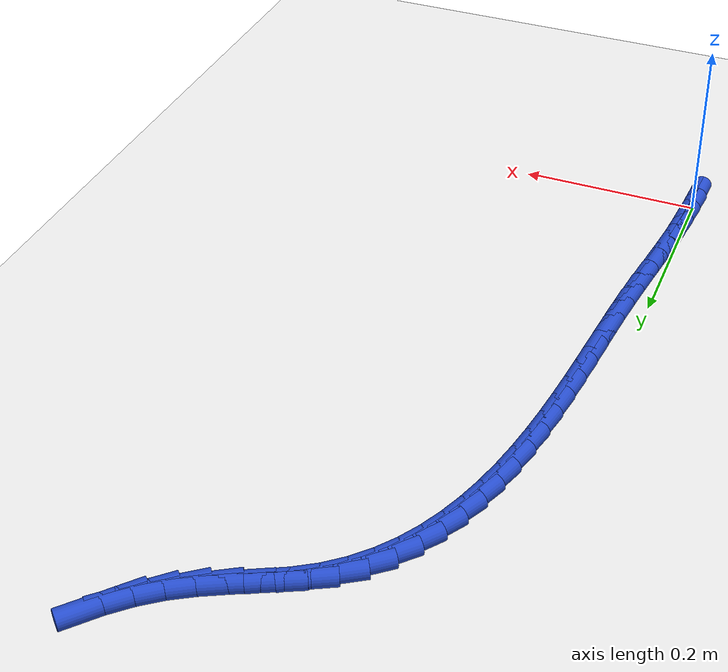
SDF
<sdf version="1.6">
 <world name="default">
  <model name="ground_plane">
   <static>1</static>
   <link name="link">
    <collision name="collision">
     <geometry><plane><normal>0 0 1</normal><size>100 100</size></plane></geometry>
     <surface><friction><ode><mu>100</mu><mu2>50</mu2></ode></friction></surface>
    </collision>
    <visual name="visual">
     <cast_shadows>0</cast_shadows>
     <geometry><plane><normal>0 0 1</normal><size>100 100</size></plane></geometry>
     <material>
      <script><uri>file://media/materials/scripts/gazebo.material</uri><name>Gazebo/WhiteGlow</name></script>
     </material>
    </visual>
   </link>
  </model>
  <model name="line">
   <link name="link_0">
    <pose>1.734723475976807e-18 9.71445146547012e-17 0.01 0 1.57 1.5256166260533213</pose>
    <collision name="collision">
     <geometry><cylinder><radius>0.01</radius><length>0.08</length></cylinder></geometry>
    </collision>
    <visual name="visual">
     <material>
      <script><name>Gazebo/Blue</name><uri>file://media/materials/scripts/gazebo.material</uri></script>
     </material>
     <geometry><cylinder><radius>0.01</radius><length>0.08</length></cylinder></geometry>
    </visual>
   </link>
   <link name="link_1">
    <pose>0.00116869647694062 0.025850131062630347 0.01 0 1.57 1.493957417507516</pose>
    <collision name="collision">
     <geometry><cylinder><radius>0.01</radius><length>0.08</length></cylinder></geometry>
    </collision>
    <visual name="visual">
     <material>
      <script><name>Gazebo/Blue</name><uri>file://media/materials/scripts/gazebo.material</uri></script>
     </material>
     <geometry><cylinder><radius>0.01</radius><length>0.08</length></cylinder></geometry>
    </visual>
   </link>
   <link name="link_2">
    <pose>0.003148059794446102 0.05155932280931687 0.01 0 1.57 1.4689957960236688</pose>
    <collision name="collision">
     <geometry><cylinder><radius>0.01</radius><length>0.08</length></cylinder></geometry>
    </collision>
    <visual name="visual">
     <material>
      <script><name>Gazebo/Blue</name><uri>file://media/materials/scripts/gazebo.material</uri></script>
     </material>
     <geometry><cylinder><radius>0.01</radius><length>0.08</length></cylinder></geometry>
    </visual>
   </link>
   <link name="link_3">
    <pose>0.005771656131429956 0.0772421652142144 0.01 0 1.57 1.4510282856935357</pose>
    <collision name="collision">
     <geometry><cylinder><radius>0.01</radius><length>0.08</length></cylinder></geometry>
    </collision>
    <visual name="visual">
     <material>
      <script><name>Gazebo/Blue</name><uri>file://media/materials/scripts/gazebo.material</uri></script>
     </material>
     <geometry><cylinder><radius>0.01</radius><length>0.08</length></cylinder></geometry>
    </visual>
   </link>
   <link name="link_4">
    <pose>0.008873051666805689 0.10301324825147767 0.01 0 1.57 1.4401528353001605</pose>
    <collision name="collision">
     <geometry><cylinder><radius>0.01</radius><length>0.08</length></cylinder></geometry>
    </collision>
    <visual name="visual">
     <material>
      <script><name>Gazebo/Blue</name><uri>file://media/materials/scripts/gazebo.material</uri></script>
     </material>
     <geometry><cylinder><radius>0.01</radius><length>0.08</length></cylinder></geometry>
    </visual>
   </link>
   <link name="link_5">
    <pose>0.012285812579486808 0.1289871618952615 0.01 0 1.57 1.4362952401775806</pose>
    <collision name="collision">
     <geometry><cylinder><radius>0.01</radius><length>0.08</length></cylinder></geometry>
    </collision>
    <visual name="visual">
     <material>
      <script><name>Gazebo/Blue</name><uri>file://media/materials/scripts/gazebo.material</uri></script>
     </material>
     <geometry><cylinder><radius>0.01</radius><length>0.08</length></cylinder></geometry>
    </visual>
   </link>
   <link name="link_6">
    <pose>0.015843505048386823 0.1552784961197205 0.01 0 1.57 1.439234777435147</pose>
    <collision name="collision">
     <geometry><cylinder><radius>0.01</radius><length>0.08</length></cylinder></geometry>
    </collision>
    <visual name="visual">
     <material>
      <script><name>Gazebo/Blue</name><uri>file://media/materials/scripts/gazebo.material</uri></script>
     </material>
     <geometry><cylinder><radius>0.01</radius><length>0.08</length></cylinder></geometry>
    </visual>
   </link>
   <link name="link_7">
    <pose>0.019379695252419237 0.1820018408990096 0.01 0 1.57 1.4486259576093121</pose>
    <collision name="collision">
     <geometry><cylinder><radius>0.01</radius><length>0.08</length></cylinder></geometry>
    </collision>
    <visual name="visual">
     <material>
      <script><name>Gazebo/Blue</name><uri>file://media/materials/scripts/gazebo.material</uri></script>
     </material>
     <geometry><cylinder><radius>0.01</radius><length>0.08</length></cylinder></geometry>
    </visual>
   </link>
   <link name="link_8">
    <pose>0.022727949370497557 0.2092717862072834 0.01 0 1.57 1.462984772046113</pose>
    <collision name="collision">
     <geometry><cylinder><radius>0.01</radius><length>0.08</length></cylinder></geometry>
    </collision>
    <visual name="visual">
     <material>
      <script><name>Gazebo/Blue</name><uri>file://media/materials/scripts/gazebo.material</uri></script>
     </material>
     <geometry><cylinder><radius>0.01</radius><length>0.08</length></cylinder></geometry>
    </visual>
   </link>
   <link name="link_9">
    <pose>0.025748484541219707 0.23717995621318205 0.01 0 1.57 1.474349265018024</pose>
    <collision name="collision">
     <geometry><cylinder><radius>0.01</radius><length>0.08</length></cylinder></geometry>
    </collision>
    <visual name="visual">
     <material>
      <script><name>Gazebo/Blue</name><uri>file://media/materials/scripts/gazebo.material</uri></script>
     </material>
     <geometry><cylinder><radius>0.01</radius><length>0.08</length></cylinder></geometry>
    </visual>
   </link>
   <link name="link_10">
    <pose>0.02850238716425009 0.2656448809664795 0.01 0 1.57 1.479580359231853</pose>
    <collision name="collision">
     <geometry><cylinder><radius>0.01</radius><length>0.08</length></cylinder></geometry>
    </collision>
    <visual name="visual">
     <material>
      <script><name>Gazebo/Blue</name><uri>file://media/materials/scripts/gazebo.material</uri></script>
     </material>
     <geometry><cylinder><radius>0.01</radius><length>0.08</length></cylinder></geometry>
    </visual>
   </link>
   <link name="link_11">
    <pose>0.03114232370157301 0.2945061736627289 0.01 0 1.57 1.4789799135891375</pose>
    <collision name="collision">
     <geometry><cylinder><radius>0.01</radius><length>0.08</length></cylinder></geometry>
    </collision>
    <visual name="visual">
     <material>
      <script><name>Gazebo/Blue</name><uri>file://media/materials/scripts/gazebo.material</uri></script>
     </material>
     <geometry><cylinder><radius>0.01</radius><length>0.08</length></cylinder></geometry>
    </visual>
   </link>
   <link name="link_12">
    <pose>0.03382142686987387 0.32360304571402376 0.01 0 1.57 1.4726811566009064</pose>
    <collision name="collision">
     <geometry><cylinder><radius>0.01</radius><length>0.08</length></cylinder></geometry>
    </collision>
    <visual name="visual">
     <material>
      <script><name>Gazebo/Blue</name><uri>file://media/materials/scripts/gazebo.material</uri></script>
     </material>
     <geometry><cylinder><radius>0.01</radius><length>0.08</length></cylinder></geometry>
    </visual>
   </link>
   <link name="link_13">
    <pose>0.036692829385838066 0.3527747085324575 0.01 0 1.57 1.460645369507437</pose>
    <collision name="collision">
     <geometry><cylinder><radius>0.01</radius><length>0.08</length></cylinder></geometry>
    </collision>
    <visual name="visual">
     <material>
      <script><name>Gazebo/Blue</name><uri>file://media/materials/scripts/gazebo.material</uri></script>
     </material>
     <geometry><cylinder><radius>0.01</radius><length>0.08</length></cylinder></geometry>
    </visual>
   </link>
   <link name="link_14">
    <pose>0.03990966396615103 0.38186037353012386 0.01 0 1.57 1.4426690949858585</pose>
    <collision name="collision">
     <geometry><cylinder><radius>0.01</radius><length>0.08</length></cylinder></geometry>
    </collision>
    <visual name="visual">
     <material>
      <script><name>Gazebo/Blue</name><uri>file://media/materials/scripts/gazebo.material</uri></script>
     </material>
     <geometry><cylinder><radius>0.01</radius><length>0.08</length></cylinder></geometry>
    </visual>
   </link>
   <link name="link_15">
    <pose>0.04362506332749818 0.41069925211911623 0.01 0 1.57 1.4183857987984956</pose>
    <collision name="collision">
     <geometry><cylinder><radius>0.01</radius><length>0.08</length></cylinder></geometry>
    </collision>
    <visual name="visual">
     <material>
      <script><name>Gazebo/Blue</name><uri>file://media/materials/scripts/gazebo.material</uri></script>
     </material>
     <geometry><cylinder><radius>0.01</radius><length>0.08</length></cylinder></geometry>
    </visual>
   </link>
   <link name="link_16">
    <pose>0.047992160186564936 0.43913055571152826 0.01 0 1.57 1.3872648616722052</pose>
    <collision name="collision">
     <geometry><cylinder><radius>0.01</radius><length>0.08</length></cylinder></geometry>
    </collision>
    <visual name="visual">
     <material>
      <script><name>Gazebo/Blue</name><uri>file://media/materials/scripts/gazebo.material</uri></script>
     </material>
     <geometry><cylinder><radius>0.01</radius><length>0.08</length></cylinder></geometry>
    </visual>
   </link>
   <link name="link_17">
    <pose>0.053164087260036685 0.46699349571945337 0.01 0 1.57 1.348612536292012</pose>
    <collision name="collision">
     <geometry><cylinder><radius>0.01</radius><length>0.08</length></cylinder></geometry>
    </collision>
    <visual name="visual">
     <material>
      <script><name>Gazebo/Blue</name><uri>file://media/materials/scripts/gazebo.material</uri></script>
     </material>
     <geometry><cylinder><radius>0.01</radius><length>0.08</length></cylinder></geometry>
    </visual>
   </link>
   <link name="link_18">
    <pose>0.059293977264598854 0.4941272835549851 0.01 0 1.57 1.3015826711993168</pose>
    <collision name="collision">
     <geometry><cylinder><radius>0.01</radius><length>0.08</length></cylinder></geometry>
    </collision>
    <visual name="visual">
     <material>
      <script><name>Gazebo/Blue</name><uri>file://media/materials/scripts/gazebo.material</uri></script>
     </material>
     <geometry><cylinder><radius>0.01</radius><length>0.08</length></cylinder></geometry>
    </visual>
   </link>
   <link name="link_19">
    <pose>0.06653496291693686 0.520371130630217 0.01 0 1.57 1.2452100775448491</pose>
    <collision name="collision">
     <geometry><cylinder><radius>0.01</radius><length>0.08</length></cylinder></geometry>
    </collision>
    <visual name="visual">
     <material>
      <script><name>Gazebo/Blue</name><uri>file://media/materials/scripts/gazebo.material</uri></script>
     </material>
     <geometry><cylinder><radius>0.01</radius><length>0.08</length></cylinder></geometry>
    </visual>
   </link>
   <link name="link_20">
    <pose>0.07504017693373613 0.5455642483572426 0.01 0 1.57 1.1784862851304385</pose>
    <collision name="collision">
     <geometry><cylinder><radius>0.01</radius><length>0.08</length></cylinder></geometry>
    </collision>
    <visual name="visual">
     <material>
      <script><name>Gazebo/Blue</name><uri>file://media/materials/scripts/gazebo.material</uri></script>
     </material>
     <geometry><cylinder><radius>0.01</radius><length>0.08</length></cylinder></geometry>
    </visual>
   </link>
   <link name="link_21">
    <pose>0.08496275203168208 0.5695458481481555 0.01 0 1.57 1.100503893631696</pose>
    <collision name="collision">
     <geometry><cylinder><radius>0.01</radius><length>0.08</length></cylinder></geometry>
    </collision>
    <visual name="visual">
     <material>
      <script><name>Gazebo/Blue</name><uri>file://media/materials/scripts/gazebo.material</uri></script>
     </material>
     <geometry><cylinder><radius>0.01</radius><length>0.08</length></cylinder></geometry>
    </visual>
   </link>
   <link name="link_22">
    <pose>0.09645582092746005 0.5921551414150488 0.01 0 1.57 1.0106947418961427</pose>
    <collision name="collision">
     <geometry><cylinder><radius>0.01</radius><length>0.08</length></cylinder></geometry>
    </collision>
    <visual name="visual">
     <material>
      <script><name>Gazebo/Blue</name><uri>file://media/materials/scripts/gazebo.material</uri></script>
     </material>
     <geometry><cylinder><radius>0.01</radius><length>0.08</length></cylinder></geometry>
    </visual>
   </link>
   <link name="link_23">
    <pose>0.10967251633775552 0.6132313395700165 0.01 0 1.57 0.9091644628190584</pose>
    <collision name="collision">
     <geometry><cylinder><radius>0.01</radius><length>0.08</length></cylinder></geometry>
    </collision>
    <visual name="visual">
     <material>
      <script><name>Gazebo/Blue</name><uri>file://media/materials/scripts/gazebo.material</uri></script>
     </material>
     <geometry><cylinder><radius>0.01</radius><length>0.08</length></cylinder></geometry>
    </visual>
   </link>
   <link name="link_24">
    <pose>0.12476597097925393 0.632613654025152 0.01 0 1.57 0.7970652830925509</pose>
    <collision name="collision">
     <geometry><cylinder><radius>0.01</radius><length>0.08</length></cylinder></geometry>
    </collision>
    <visual name="visual">
     <material>
      <script><name>Gazebo/Blue</name><uri>file://media/materials/scripts/gazebo.material</uri></script>
     </material>
     <geometry><cylinder><radius>0.01</radius><length>0.08</length></cylinder></geometry>
    </visual>
   </link>
   <link name="link_25">
    <pose>0.1418893175686407 0.650141296192549 0.01 0 1.57 0.6768560873420214</pose>
    <collision name="collision">
     <geometry><cylinder><radius>0.01</radius><length>0.08</length></cylinder></geometry>
    </collision>
    <visual name="visual">
     <material>
      <script><name>Gazebo/Blue</name><uri>file://media/materials/scripts/gazebo.material</uri></script>
     </material>
     <geometry><cylinder><radius>0.01</radius><length>0.08</length></cylinder></geometry>
    </visual>
   </link>
   <link name="link_26">
    <pose>0.16119568882260113 0.6656534774843008 0.01 0 1.57 0.5550580872785529</pose>
    <collision name="collision">
     <geometry><cylinder><radius>0.01</radius><length>0.08</length></cylinder></geometry>
    </collision>
    <visual name="visual">
     <material>
      <script><name>Gazebo/Blue</name><uri>file://media/materials/scripts/gazebo.material</uri></script>
     </material>
     <geometry><cylinder><radius>0.01</radius><length>0.08</length></cylinder></geometry>
    </visual>
   </link>
   <link name="link_27">
    <pose>0.182788204559637 0.679042701418995 0.01 0 1.57 0.4692039540594988</pose>
    <collision name="collision">
     <geometry><cylinder><radius>0.01</radius><length>0.08</length></cylinder></geometry>
    </collision>
    <visual name="visual">
     <material>
      <script><name>Gazebo/Blue</name><uri>file://media/materials/scripts/gazebo.material</uri></script>
     </material>
     <geometry><cylinder><radius>0.01</radius><length>0.08</length></cylinder></geometry>
    </visual>
   </link>
   <link name="link_28">
    <pose>0.20613460839057637 0.690878507594972 0.01 0 1.57 0.4385508027406525</pose>
    <collision name="collision">
     <geometry><cylinder><radius>0.01</radius><length>0.08</length></cylinder></geometry>
    </collision>
    <visual name="visual">
     <material>
      <script><name>Gazebo/Blue</name><uri>file://media/materials/scripts/gazebo.material</uri></script>
     </material>
     <geometry><cylinder><radius>0.01</radius><length>0.08</length></cylinder></geometry>
    </visual>
   </link>
   <link name="link_29">
    <pose>0.2302655471547311 0.70219619161636 0.01 0 1.57 0.45947059804062507</pose>
    <collision name="collision">
     <geometry><cylinder><radius>0.01</radius><length>0.08</length></cylinder></geometry>
    </collision>
    <visual name="visual">
     <material>
      <script><name>Gazebo/Blue</name><uri>file://media/materials/scripts/gazebo.material</uri></script>
     </material>
     <geometry><cylinder><radius>0.01</radius><length>0.08</length></cylinder></geometry>
    </visual>
   </link>
   <link name="link_30">
    <pose>0.25420305835117973 0.7140402229183036 0.01 0 1.57 0.532251332192737</pose>
    <collision name="collision">
     <geometry><cylinder><radius>0.01</radius><length>0.08</length></cylinder></geometry>
    </collision>
    <visual name="visual">
     <material>
      <script><name>Gazebo/Blue</name><uri>file://media/materials/scripts/gazebo.material</uri></script>
     </material>
     <geometry><cylinder><radius>0.01</radius><length>0.08</length></cylinder></geometry>
    </visual>
   </link>
   <link name="link_31">
    <pose>0.2769731182681054 0.7274505409547506 0.01 0 1.57 0.6384898365629288</pose>
    <collision name="collision">
     <geometry><cylinder><radius>0.01</radius><length>0.08</length></cylinder></geometry>
    </collision>
    <visual name="visual">
     <material>
      <script><name>Gazebo/Blue</name><uri>file://media/materials/scripts/gazebo.material</uri></script>
     </material>
     <geometry><cylinder><radius>0.01</radius><length>0.08</length></cylinder></geometry>
    </visual>
   </link>
   <link name="link_32">
    <pose>0.2979748091717407 0.7430379779031943 0.01 0 1.57 0.7391589999462186</pose>
    <collision name="collision">
     <geometry><cylinder><radius>0.01</radius><length>0.08</length></cylinder></geometry>
    </collision>
    <visual name="visual">
     <material>
      <script><name>Gazebo/Blue</name><uri>file://media/materials/scripts/gazebo.material</uri></script>
     </material>
     <geometry><cylinder><radius>0.01</radius><length>0.08</length></cylinder></geometry>
    </visual>
   </link>
   <link name="link_33">
    <pose>0.3172819406254005 0.7606373655288242 0.01 0 1.57 0.8286654513053895</pose>
    <collision name="collision">
     <geometry><cylinder><radius>0.01</radius><length>0.08</length></cylinder></geometry>
    </collision>
    <visual name="visual">
     <material>
      <script><name>Gazebo/Blue</name><uri>file://media/materials/scripts/gazebo.material</uri></script>
     </material>
     <geometry><cylinder><radius>0.01</radius><length>0.08</length></cylinder></geometry>
    </visual>
   </link>
   <link name="link_290">
    <pose>-8.673617379884035e-18 2.7755575615628914e-16 0.01 0 1.57 1.5242305870977706</pose>
    <collision name="collision">
     <geometry><cylinder><radius>0.01</radius><length>0.08</length></cylinder></geometry>
    </collision>
    <visual name="visual">
     <material>
      <script><name>Gazebo/Blue</name><uri>file://media/materials/scripts/gazebo.material</uri></script>
     </material>
     <geometry><cylinder><radius>0.01</radius><length>0.08</length></cylinder></geometry>
    </visual>
   </link>
   <link name="link_291">
    <pose>0.0012031502155717497 0.02581899210593316 0.01 0 1.57 1.4839056871804375</pose>
    <collision name="collision">
     <geometry><cylinder><radius>0.01</radius><length>0.08</length></cylinder></geometry>
    </collision>
    <visual name="visual">
     <material>
      <script><name>Gazebo/Blue</name><uri>file://media/materials/scripts/gazebo.material</uri></script>
     </material>
     <geometry><cylinder><radius>0.01</radius><length>0.08</length></cylinder></geometry>
    </visual>
   </link>
   <link name="link_292">
    <pose>0.00342368970349562 0.0513102111557444 0.01 0 1.57 1.5041697802124634</pose>
    <collision name="collision">
     <geometry><cylinder><radius>0.01</radius><length>0.08</length></cylinder></geometry>
    </collision>
    <visual name="visual">
     <material>
      <script><name>Gazebo/Blue</name><uri>file://media/materials/scripts/gazebo.material</uri></script>
     </material>
     <geometry><cylinder><radius>0.01</radius><length>0.08</length></cylinder></geometry>
    </visual>
   </link>
  </model>
 </world>
</sdf>
